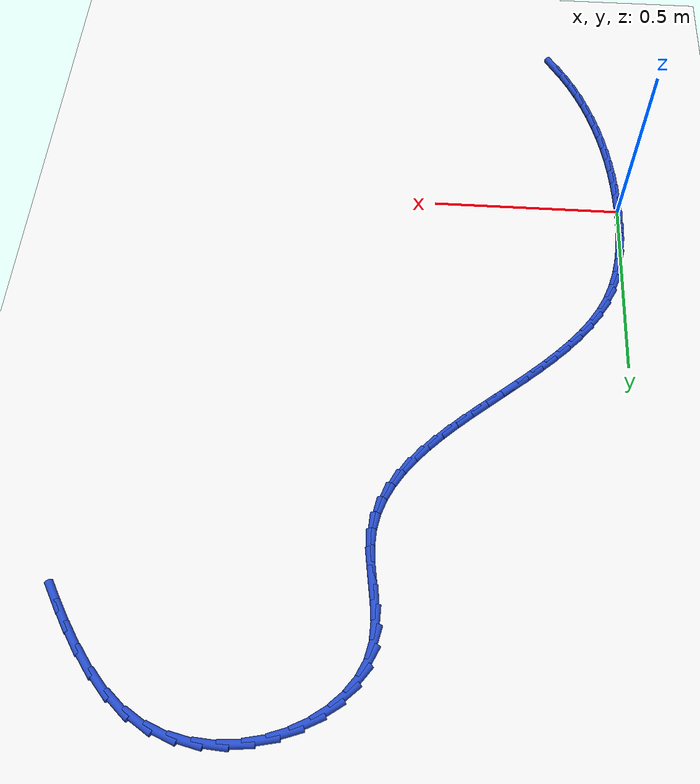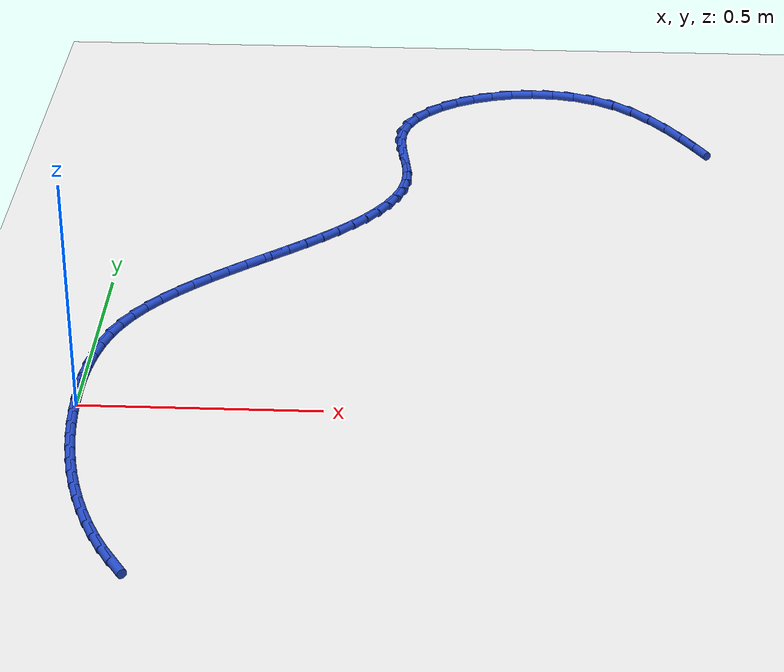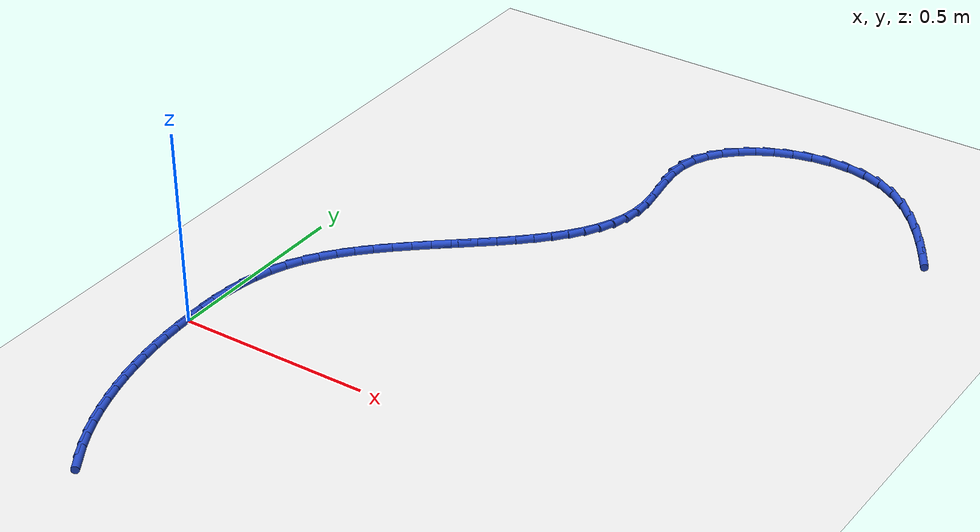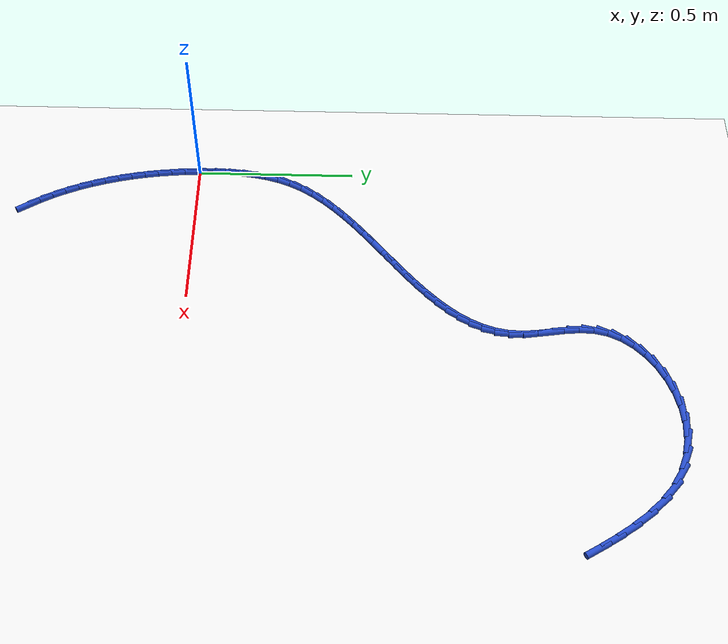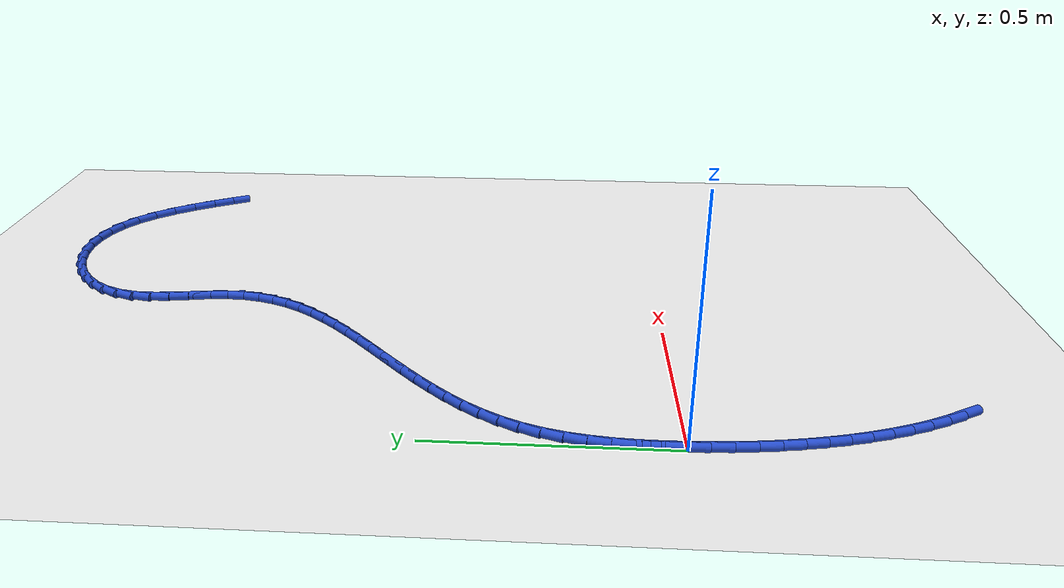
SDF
<sdf version="1.6">
 <world name="default">
  <model name="ground_plane">
   <static>1</static>
   <link name="link">
    <collision name="collision">
     <geometry><plane><normal>0 0 1</normal><size>100 100</size></plane></geometry>
     <surface><friction><ode><mu>100</mu><mu2>50</mu2></ode></friction></surface>
    </collision>
    <visual name="visual">
     <cast_shadows>0</cast_shadows>
     <geometry><plane><normal>0 0 1</normal><size>100 100</size></plane></geometry>
     <material>
      <script><uri>file://media/materials/scripts/gazebo.material</uri><name>Gazebo/WhiteGlow</name></script>
     </material>
    </visual>
   </link>
  </model>
  <model name="line">
   <link name="link_0">
    <pose>-3.0357660829594124e-17 6.938893903907228e-18 0.01 0 1.57 -1.553074628439133</pose>
    <collision name="collision">
     <geometry><cylinder><radius>0.01</radius><length>0.08</length></cylinder></geometry>
    </collision>
    <visual name="visual">
     <material>
      <script><name>Gazebo/Blue</name><uri>file://media/materials/scripts/gazebo.material</uri></script>
     </material>
     <geometry><cylinder><radius>0.01</radius><length>0.08</length></cylinder></geometry>
    </visual>
   </link>
   <link name="link_1">
    <pose>-0.0007901279141245099 0.04458067060196605 0.01 0 1.57 1.549204396804768</pose>
    <collision name="collision">
     <geometry><cylinder><radius>0.01</radius><length>0.08</length></cylinder></geometry>
    </collision>
    <visual name="visual">
     <material>
      <script><name>Gazebo/Blue</name><uri>file://media/materials/scripts/gazebo.material</uri></script>
     </material>
     <geometry><cylinder><radius>0.01</radius><length>0.08</length></cylinder></geometry>
    </visual>
   </link>
   <link name="link_2">
    <pose>0.000174105443379259 0.0892308481333902 0.01 0 1.57 1.5001961556845738</pose>
    <collision name="collision">
     <geometry><cylinder><radius>0.01</radius><length>0.08</length></cylinder></geometry>
    </collision>
    <visual name="visual">
     <material>
      <script><name>Gazebo/Blue</name><uri>file://media/materials/scripts/gazebo.material</uri></script>
     </material>
     <geometry><cylinder><radius>0.01</radius><length>0.08</length></cylinder></geometry>
    </visual>
   </link>
   <link name="link_3">
    <pose>0.003315180171562166 0.13364793904845731 0.01 0 1.57 1.4407188430618099</pose>
    <collision name="collision">
     <geometry><cylinder><radius>0.01</radius><length>0.08</length></cylinder></geometry>
    </collision>
    <visual name="visual">
     <material>
      <script><name>Gazebo/Blue</name><uri>file://media/materials/scripts/gazebo.material</uri></script>
     </material>
     <geometry><cylinder><radius>0.01</radius><length>0.08</length></cylinder></geometry>
    </visual>
   </link>
   <link name="link_4">
    <pose>0.009055576369475104 0.17752934980135243 0.01 0 1.57 1.369972532111425</pose>
    <collision name="collision">
     <geometry><cylinder><radius>0.01</radius><length>0.08</length></cylinder></geometry>
    </collision>
    <visual name="visual">
     <material>
      <script><name>Gazebo/Blue</name><uri>file://media/materials/scripts/gazebo.material</uri></script>
     </material>
     <geometry><cylinder><radius>0.01</radius><length>0.08</length></cylinder></geometry>
    </visual>
   </link>
   <link name="link_5">
    <pose>0.01781777413616896 0.22057248684626019 0.01 0 1.57 1.2873325100912216</pose>
    <collision name="collision">
     <geometry><cylinder><radius>0.01</radius><length>0.08</length></cylinder></geometry>
    </collision>
    <visual name="visual">
     <material>
      <script><name>Gazebo/Blue</name><uri>file://media/materials/scripts/gazebo.material</uri></script>
     </material>
     <geometry><cylinder><radius>0.01</radius><length>0.08</length></cylinder></geometry>
    </visual>
   </link>
   <link name="link_6">
    <pose>0.03002425357069461 0.2624747566373655 0.01 0 1.57 1.1926419788531324</pose>
    <collision name="collision">
     <geometry><cylinder><radius>0.01</radius><length>0.08</length></cylinder></geometry>
    </collision>
    <visual name="visual">
     <material>
      <script><name>Gazebo/Blue</name><uri>file://media/materials/scripts/gazebo.material</uri></script>
     </material>
     <geometry><cylinder><radius>0.01</radius><length>0.08</length></cylinder></geometry>
    </visual>
   </link>
   <link name="link_7">
    <pose>0.04609749477210298 0.30293356562885343 0.01 0 1.57 1.0889990187016318</pose>
    <collision name="collision">
     <geometry><cylinder><radius>0.01</radius><length>0.08</length></cylinder></geometry>
    </collision>
    <visual name="visual">
     <material>
      <script><name>Gazebo/Blue</name><uri>file://media/materials/scripts/gazebo.material</uri></script>
     </material>
     <geometry><cylinder><radius>0.01</radius><length>0.08</length></cylinder></geometry>
    </visual>
   </link>
   <link name="link_8">
    <pose>0.06636599742501177 0.3416954748177271 0.01 0 1.57 0.9932835902297723</pose>
    <collision name="collision">
     <geometry><cylinder><radius>0.01</radius><length>0.08</length></cylinder></geometry>
    </collision>
    <visual name="visual">
     <material>
      <script><name>Gazebo/Blue</name><uri>file://media/materials/scripts/gazebo.material</uri></script>
     </material>
     <geometry><cylinder><radius>0.01</radius><length>0.08</length></cylinder></geometry>
    </visual>
   </link>
   <link name="link_9">
    <pose>0.09055778105871455 0.37882111412359 0.01 0 1.57 0.9121909174537467</pose>
    <collision name="collision">
     <geometry><cylinder><radius>0.01</radius><length>0.08</length></cylinder></geometry>
    </collision>
    <visual name="visual">
     <material>
      <script><name>Gazebo/Blue</name><uri>file://media/materials/scripts/gazebo.material</uri></script>
     </material>
     <geometry><cylinder><radius>0.01</radius><length>0.08</length></cylinder></geometry>
    </visual>
   </link>
   <link name="link_10">
    <pose>0.118164590096321 0.4144946923510066 0.01 0 1.57 0.8452936040650084</pose>
    <collision name="collision">
     <geometry><cylinder><radius>0.01</radius><length>0.08</length></cylinder></geometry>
    </collision>
    <visual name="visual">
     <material>
      <script><name>Gazebo/Blue</name><uri>file://media/materials/scripts/gazebo.material</uri></script>
     </material>
     <geometry><cylinder><radius>0.01</radius><length>0.08</length></cylinder></geometry>
    </visual>
   </link>
   <link name="link_11">
    <pose>0.14867760197149155 0.4489007148568321 0.01 0 1.57 0.7916272695713802</pose>
    <collision name="collision">
     <geometry><cylinder><radius>0.01</radius><length>0.08</length></cylinder></geometry>
    </collision>
    <visual name="visual">
     <material>
      <script><name>Gazebo/Blue</name><uri>file://media/materials/scripts/gazebo.material</uri></script>
     </material>
     <geometry><cylinder><radius>0.01</radius><length>0.08</length></cylinder></geometry>
    </visual>
   </link>
   <link name="link_12">
    <pose>0.1815879941178864 0.48222368699792134 0.01 0 1.57 0.750089971589212</pose>
    <collision name="collision">
     <geometry><cylinder><radius>0.01</radius><length>0.08</length></cylinder></geometry>
    </collision>
    <visual name="visual">
     <material>
      <script><name>Gazebo/Blue</name><uri>file://media/materials/scripts/gazebo.material</uri></script>
     </material>
     <geometry><cylinder><radius>0.01</radius><length>0.08</length></cylinder></geometry>
    </visual>
   </link>
   <link name="link_13">
    <pose>0.21638694396916622 0.5146481141311298 0.01 0 1.57 0.7196753319886483</pose>
    <collision name="collision">
     <geometry><cylinder><radius>0.01</radius><length>0.08</length></cylinder></geometry>
    </collision>
    <visual name="visual">
     <material>
      <script><name>Gazebo/Blue</name><uri>file://media/materials/scripts/gazebo.material</uri></script>
     </material>
     <geometry><cylinder><radius>0.01</radius><length>0.08</length></cylinder></geometry>
    </visual>
   </link>
   <link name="link_14">
    <pose>0.25256562895899115 0.5463585016133123 0.01 0 1.57 0.699595779834706</pose>
    <collision name="collision">
     <geometry><cylinder><radius>0.01</radius><length>0.08</length></cylinder></geometry>
    </collision>
    <visual name="visual">
     <material>
      <script><name>Gazebo/Blue</name><uri>file://media/materials/scripts/gazebo.material</uri></script>
     </material>
     <geometry><cylinder><radius>0.01</radius><length>0.08</length></cylinder></geometry>
    </visual>
   </link>
   <link name="link_15">
    <pose>0.2896152265210216 0.5775393548013241 0.01 0 1.57 0.6893415336585952</pose>
    <collision name="collision">
     <geometry><cylinder><radius>0.01</radius><length>0.08</length></cylinder></geometry>
    </collision>
    <visual name="visual">
     <material>
      <script><name>Gazebo/Blue</name><uri>file://media/materials/scripts/gazebo.material</uri></script>
     </material>
     <geometry><cylinder><radius>0.01</radius><length>0.08</length></cylinder></geometry>
    </visual>
   </link>
   <link name="link_16">
    <pose>0.32702691408891826 0.6083751790520205 0.01 0 1.57 0.6887087083756894</pose>
    <collision name="collision">
     <geometry><cylinder><radius>0.01</radius><length>0.08</length></cylinder></geometry>
    </collision>
    <visual name="visual">
     <material>
      <script><name>Gazebo/Blue</name><uri>file://media/materials/scripts/gazebo.material</uri></script>
     </material>
     <geometry><cylinder><radius>0.01</radius><length>0.08</length></cylinder></geometry>
    </visual>
   </link>
   <link name="link_17">
    <pose>0.36429186909634115 0.6390504797222563 0.01 0 1.57 0.6978166173289755</pose>
    <collision name="collision">
     <geometry><cylinder><radius>0.01</radius><length>0.08</length></cylinder></geometry>
    </collision>
    <visual name="visual">
     <material>
      <script><name>Gazebo/Blue</name><uri>file://media/materials/scripts/gazebo.material</uri></script>
     </material>
     <geometry><cylinder><radius>0.01</radius><length>0.08</length></cylinder></geometry>
    </visual>
   </link>
   <link name="link_18">
    <pose>0.4009012689769507 0.6697497621688865 0.01 0 1.57 0.7171237123761259</pose>
    <collision name="collision">
     <geometry><cylinder><radius>0.01</radius><length>0.08</length></cylinder></geometry>
    </collision>
    <visual name="visual">
     <material>
      <script><name>Gazebo/Blue</name><uri>file://media/materials/scripts/gazebo.material</uri></script>
     </material>
     <geometry><cylinder><radius>0.01</radius><length>0.08</length></cylinder></geometry>
    </visual>
   </link>
   <link name="link_19">
    <pose>0.43634629116440754 0.7006575317487665 0.01 0 1.57 0.7474424996967688</pose>
    <collision name="collision">
     <geometry><cylinder><radius>0.01</radius><length>0.08</length></cylinder></geometry>
    </collision>
    <visual name="visual">
     <material>
      <script><name>Gazebo/Blue</name><uri>file://media/materials/scripts/gazebo.material</uri></script>
     </material>
     <geometry><cylinder><radius>0.01</radius><length>0.08</length></cylinder></geometry>
    </visual>
   </link>
   <link name="link_20">
    <pose>0.4701181130923718 0.7319582938187513 0.01 0 1.57 0.789943108257413</pose>
    <collision name="collision">
     <geometry><cylinder><radius>0.01</radius><length>0.08</length></cylinder></geometry>
    </collision>
    <visual name="visual">
     <material>
      <script><name>Gazebo/Blue</name><uri>file://media/materials/scripts/gazebo.material</uri></script>
     </material>
     <geometry><cylinder><radius>0.01</radius><length>0.08</length></cylinder></geometry>
    </visual>
   </link>
   <link name="link_21">
    <pose>0.501707912194504 0.7638365537356961 0.01 0 1.57 0.8461189587645169</pose>
    <collision name="collision">
     <geometry><cylinder><radius>0.01</radius><length>0.08</length></cylinder></geometry>
    </collision>
    <visual name="visual">
     <material>
      <script><name>Gazebo/Blue</name><uri>file://media/materials/scripts/gazebo.material</uri></script>
     </material>
     <geometry><cylinder><radius>0.01</radius><length>0.08</length></cylinder></geometry>
    </visual>
   </link>
   <link name="link_22">
    <pose>0.5306068659044644 0.796476816856456 0.01 0 1.57 0.9176626161256145</pose>
    <collision name="collision">
     <geometry><cylinder><radius>0.01</radius><length>0.08</length></cylinder></geometry>
    </collision>
    <visual name="visual">
     <material>
      <script><name>Gazebo/Blue</name><uri>file://media/materials/scripts/gazebo.material</uri></script>
     </material>
     <geometry><cylinder><radius>0.01</radius><length>0.08</length></cylinder></geometry>
    </visual>
   </link>
   <link name="link_23">
    <pose>0.5563061516559136 0.8300635885378859 0.01 0 1.57 1.006168050811545</pose>
    <collision name="collision">
     <geometry><cylinder><radius>0.01</radius><length>0.08</length></cylinder></geometry>
    </collision>
    <visual name="visual">
     <material>
      <script><name>Gazebo/Blue</name><uri>file://media/materials/scripts/gazebo.material</uri></script>
     </material>
     <geometry><cylinder><radius>0.01</radius><length>0.08</length></cylinder></geometry>
    </visual>
   </link>
   <link name="link_24">
    <pose>0.5782969468825119 0.8647813741368411 0.01 0 1.57 1.1125620676882175</pose>
    <collision name="collision">
     <geometry><cylinder><radius>0.01</radius><length>0.08</length></cylinder></geometry>
    </collision>
    <visual name="visual">
     <material>
      <script><name>Gazebo/Blue</name><uri>file://media/materials/scripts/gazebo.material</uri></script>
     </material>
     <geometry><cylinder><radius>0.01</radius><length>0.08</length></cylinder></geometry>
    </visual>
   </link>
   <link name="link_25">
    <pose>0.5960704290179195 0.9008146790101768 0.01 0 1.57 1.2362430970811253</pose>
    <collision name="collision">
     <geometry><cylinder><radius>0.01</radius><length>0.08</length></cylinder></geometry>
    </collision>
    <visual name="visual">
     <material>
      <script><name>Gazebo/Blue</name><uri>file://media/materials/scripts/gazebo.material</uri></script>
     </material>
     <geometry><cylinder><radius>0.01</radius><length>0.08</length></cylinder></geometry>
    </visual>
   </link>
   <link name="link_26">
    <pose>0.609117775495797 0.9383480085147478 0.01 0 1.57 1.3741654403300576</pose>
    <collision name="collision">
     <geometry><cylinder><radius>0.01</radius><length>0.08</length></cylinder></geometry>
    </collision>
    <visual name="visual">
     <material>
      <script><name>Gazebo/Blue</name><uri>file://media/materials/scripts/gazebo.material</uri></script>
     </material>
     <geometry><cylinder><radius>0.01</radius><length>0.08</length></cylinder></geometry>
    </visual>
   </link>
   <link name="link_27">
    <pose>0.6169301637498048 0.9775658680074095 0.01 0 1.57 1.520465684541178</pose>
    <collision name="collision">
     <geometry><cylinder><radius>0.01</radius><length>0.08</length></cylinder></geometry>
    </collision>
    <visual name="visual">
     <material>
      <script><name>Gazebo/Blue</name><uri>file://media/materials/scripts/gazebo.material</uri></script>
     </material>
     <geometry><cylinder><radius>0.01</radius><length>0.08</length></cylinder></geometry>
    </visual>
   </link>
   <link name="link_28">
    <pose>0.6189998266631821 1.0186524689419427 0.01 0 1.57 -1.4917065667509501</pose>
    <collision name="collision">
     <geometry><cylinder><radius>0.01</radius><length>0.08</length></cylinder></geometry>
    </collision>
    <visual name="visual">
     <material>
      <script><name>Gazebo/Blue</name><uri>file://media/materials/scripts/gazebo.material</uri></script>
     </material>
     <geometry><cylinder><radius>0.01</radius><length>0.08</length></cylinder></geometry>
    </visual>
   </link>
   <link name="link_29">
    <pose>0.6155979898661069 1.0615751025445888 0.01 0 1.57 -1.425765584232859</pose>
    <collision name="collision">
     <geometry><cylinder><radius>0.01</radius><length>0.08</length></cylinder></geometry>
    </collision>
    <visual name="visual">
     <material>
      <script><name>Gazebo/Blue</name><uri>file://media/materials/scripts/gazebo.material</uri></script>
     </material>
     <geometry><cylinder><radius>0.01</radius><length>0.08</length></cylinder></geometry>
    </visual>
   </link>
   <link name="link_30">
    <pose>0.6091532271839346 1.1057003195812676 0.01 0 1.57 -1.4219051527942592</pose>
    <collision name="collision">
     <geometry><cylinder><radius>0.01</radius><length>0.08</length></cylinder></geometry>
    </collision>
    <visual name="visual">
     <material>
      <script><name>Gazebo/Blue</name><uri>file://media/materials/scripts/gazebo.material</uri></script>
     </material>
     <geometry><cylinder><radius>0.01</radius><length>0.08</length></cylinder></geometry>
    </visual>
   </link>
   <link name="link_31">
    <pose>0.6024644889751497 1.150291534861682 0.01 0 1.57 -1.477795868608527</pose>
    <collision name="collision">
     <geometry><cylinder><radius>0.01</radius><length>0.08</length></cylinder></geometry>
    </collision>
    <visual name="visual">
     <material>
      <script><name>Gazebo/Blue</name><uri>file://media/materials/scripts/gazebo.material</uri></script>
     </material>
     <geometry><cylinder><radius>0.01</radius><length>0.08</length></cylinder></geometry>
    </visual>
   </link>
   <link name="link_32">
    <pose>0.5983307255982356 1.1946121631955346 0.01 0 1.57 1.542633272863274</pose>
    <collision name="collision">
     <geometry><cylinder><radius>0.01</radius><length>0.08</length></cylinder></geometry>
    </collision>
    <visual name="visual">
     <material>
      <script><name>Gazebo/Blue</name><uri>file://media/materials/scripts/gazebo.material</uri></script>
     </material>
     <geometry><cylinder><radius>0.01</radius><length>0.08</length></cylinder></geometry>
    </visual>
   </link>
   <link name="link_33">
    <pose>0.599550887411677 1.2379256193925288 0.01 0 1.57 1.3505509018669752</pose>
    <collision name="collision">
     <geometry><cylinder><radius>0.01</radius><length>0.08</length></cylinder></geometry>
    </collision>
    <visual name="visual">
     <material>
      <script><name>Gazebo/Blue</name><uri>file://media/materials/scripts/gazebo.material</uri></script>
     </material>
     <geometry><cylinder><radius>0.01</radius><length>0.08</length></cylinder></geometry>
    </visual>
   </link>
   <link name="link_34">
    <pose>0.608857741209896 1.279496876197769 0.01 0 1.57 1.1322940176531735</pose>
    <collision name="collision">
     <geometry><cylinder><radius>0.01</radius><length>0.08</length></cylinder></geometry>
    </collision>
    <visual name="visual">
     <material>
      <script><name>Gazebo/Blue</name><uri>file://media/materials/scripts/gazebo.material</uri></script>
     </material>
     <geometry><cylinder><radius>0.01</radius><length>0.08</length></cylinder></geometry>
    </visual>
   </link>
   <link name="link_35">
    <pose>0.6272105496815719 1.318632653954447 0.01 0 1.57 0.9381526829207408</pose>
    <collision name="collision">
     <geometry><cylinder><radius>0.01</radius><length>0.08</length></cylinder></geometry>
    </collision>
    <visual name="visual">
     <material>
      <script><name>Gazebo/Blue</name><uri>file://media/materials/scripts/gazebo.material</uri></script>
     </material>
     <geometry><cylinder><radius>0.01</radius><length>0.08</length></cylinder></geometry>
    </visual>
   </link>
   <link name="link_36">
    <pose>0.6536431038155665 1.3546849978620055 0.01 0 1.57 0.7682769348026213</pose>
    <collision name="collision">
     <geometry><cylinder><radius>0.01</radius><length>0.08</length></cylinder></geometry>
    </collision>
    <visual name="visual">
     <material>
      <script><name>Gazebo/Blue</name><uri>file://media/materials/scripts/gazebo.material</uri></script>
     </material>
     <geometry><cylinder><radius>0.01</radius><length>0.08</length></cylinder></geometry>
    </visual>
   </link>
   <link name="link_37">
    <pose>0.6870925531043579 1.3870082280231897 0.01 0 1.57 0.616932547448426</pose>
    <collision name="collision">
     <geometry><cylinder><radius>0.01</radius><length>0.08</length></cylinder></geometry>
    </collision>
    <visual name="visual">
     <material>
      <script><name>Gazebo/Blue</name><uri>file://media/materials/scripts/gazebo.material</uri></script>
     </material>
     <geometry><cylinder><radius>0.01</radius><length>0.08</length></cylinder></geometry>
    </visual>
   </link>
   <link name="link_38">
    <pose>0.7264960470404243 1.4149566645407463 0.01 0 1.57 0.4776466507775044</pose>
    <collision name="collision">
     <geometry><cylinder><radius>0.01</radius><length>0.08</length></cylinder></geometry>
    </collision>
    <visual name="visual">
     <material>
      <script><name>Gazebo/Blue</name><uri>file://media/materials/scripts/gazebo.material</uri></script>
     </material>
     <geometry><cylinder><radius>0.01</radius><length>0.08</length></cylinder></geometry>
    </visual>
   </link>
   <link name="link_39">
    <pose>0.7707907351162429 1.4378846275174197 0.01 0 1.57 0.3444056914961959</pose>
    <collision name="collision">
     <geometry><cylinder><radius>0.01</radius><length>0.08</length></cylinder></geometry>
    </collision>
    <visual name="visual">
     <material>
      <script><name>Gazebo/Blue</name><uri>file://media/materials/scripts/gazebo.material</uri></script>
     </material>
     <geometry><cylinder><radius>0.01</radius><length>0.08</length></cylinder></geometry>
    </visual>
   </link>
   <link name="link_40">
    <pose>0.8189137668242923 1.4551464370559573 0.01 0 1.57 0.21194413332543177</pose>
    <collision name="collision">
     <geometry><cylinder><radius>0.01</radius><length>0.08</length></cylinder></geometry>
    </collision>
    <visual name="visual">
     <material>
      <script><name>Gazebo/Blue</name><uri>file://media/materials/scripts/gazebo.material</uri></script>
     </material>
     <geometry><cylinder><radius>0.01</radius><length>0.08</length></cylinder></geometry>
    </visual>
   </link>
   <link name="link_41">
    <pose>0.8698022916570498 1.4660964132591037 0.01 0 1.57 0.0757697522400697</pose>
    <collision name="collision">
     <geometry><cylinder><radius>0.01</radius><length>0.08</length></cylinder></geometry>
    </collision>
    <visual name="visual">
     <material>
      <script><name>Gazebo/Blue</name><uri>file://media/materials/scripts/gazebo.material</uri></script>
     </material>
     <geometry><cylinder><radius>0.01</radius><length>0.08</length></cylinder></geometry>
    </visual>
   </link>
   <link name="link_42">
    <pose>0.9223934591069932 1.4700888762296054 0.01 0 1.57 -0.06772764670613399</pose>
    <collision name="collision">
     <geometry><cylinder><radius>0.01</radius><length>0.08</length></cylinder></geometry>
    </collision>
    <visual name="visual">
     <material>
      <script><name>Gazebo/Blue</name><uri>file://media/materials/scripts/gazebo.material</uri></script>
     </material>
     <geometry><cylinder><radius>0.01</radius><length>0.08</length></cylinder></geometry>
    </visual>
   </link>
   <link name="link_43">
    <pose>0.9756244186666013 1.4664781460702083 0.01 0 1.57 -0.22091472987753152</pose>
    <collision name="collision">
     <geometry><cylinder><radius>0.01</radius><length>0.08</length></cylinder></geometry>
    </collision>
    <visual name="visual">
     <material>
      <script><name>Gazebo/Blue</name><uri>file://media/materials/scripts/gazebo.material</uri></script>
     </material>
     <geometry><cylinder><radius>0.01</radius><length>0.08</length></cylinder></geometry>
    </visual>
   </link>
   <link name="link_44">
    <pose>1.028432319828351 1.4546185428836576 0.01 0 1.57 -0.3842860537588678</pose>
    <collision name="collision">
     <geometry><cylinder><radius>0.01</radius><length>0.08</length></cylinder></geometry>
    </collision>
    <visual name="visual">
     <material>
      <script><name>Gazebo/Blue</name><uri>file://media/materials/scripts/gazebo.material</uri></script>
     </material>
     <geometry><cylinder><radius>0.01</radius><length>0.08</length></cylinder></geometry>
    </visual>
   </link>
   <link name="link_45">
    <pose>1.079754312084721 1.4338643867726997 0.01 0 1.57 -0.555788848875577</pose>
    <collision name="collision">
     <geometry><cylinder><radius>0.01</radius><length>0.08</length></cylinder></geometry>
    </collision>
    <visual name="visual">
     <material>
      <script><name>Gazebo/Blue</name><uri>file://media/materials/scripts/gazebo.material</uri></script>
     </material>
     <geometry><cylinder><radius>0.01</radius><length>0.08</length></cylinder></geometry>
    </visual>
   </link>
   <link name="link_46">
    <pose>1.1285277169356334 1.4035712963325608 0.01 0 1.57 -0.7169326110066782</pose>
    <collision name="collision">
     <geometry><cylinder><radius>0.01</radius><length>0.08</length></cylinder></geometry>
    </collision>
    <visual name="visual">
     <material>
      <script><name>Gazebo/Blue</name><uri>file://media/materials/scripts/gazebo.material</uri></script>
     </material>
     <geometry><cylinder><radius>0.01</radius><length>0.08</length></cylinder></geometry>
    </visual>
   </link>
   <link name="link_47">
    <pose>1.1738217427984357 1.3640905108471728 0.01 0 1.57 -0.8348408429273039</pose>
    <collision name="collision">
     <geometry><cylinder><radius>0.01</radius><length>0.08</length></cylinder></geometry>
    </collision>
    <visual name="visual">
     <material>
      <script><name>Gazebo/Blue</name><uri>file://media/materials/scripts/gazebo.material</uri></script>
     </material>
     <geometry><cylinder><radius>0.01</radius><length>0.08</length></cylinder></geometry>
    </visual>
   </link>
   <link name="link_48">
    <pose>1.2150727049811045 1.3185445771904358 0.01 0 1.57 -0.9180297185291241</pose>
    <collision name="collision">
     <geometry><cylinder><radius>0.01</radius><length>0.08</length></cylinder></geometry>
    </collision>
    <visual name="visual">
     <material>
      <script><name>Gazebo/Blue</name><uri>file://media/materials/scripts/gazebo.material</uri></script>
     </material>
     <geometry><cylinder><radius>0.01</radius><length>0.08</length></cylinder></geometry>
    </visual>
   </link>
   <link name="link_49">
    <pose>1.2517802848746813 1.2705343958477524 0.01 0 1.57 -0.9766913718913945</pose>
    <collision name="collision">
     <geometry><cylinder><radius>0.01</radius><length>0.08</length></cylinder></geometry>
    </collision>
    <visual name="visual">
     <material>
      <script><name>Gazebo/Blue</name><uri>file://media/materials/scripts/gazebo.material</uri></script>
     </material>
     <geometry><cylinder><radius>0.01</radius><length>0.08</length></cylinder></geometry>
    </visual>
   </link>
   <link name="link_50">
    <pose>1.2834441638702054 1.223660867304524 0.01 0 1.57 -1.0158768063774637</pose>
    <collision name="collision">
     <geometry><cylinder><radius>0.01</radius><length>0.08</length></cylinder></geometry>
    </collision>
    <visual name="visual">
     <material>
      <script><name>Gazebo/Blue</name><uri>file://media/materials/scripts/gazebo.material</uri></script>
     </material>
     <geometry><cylinder><radius>0.01</radius><length>0.08</length></cylinder></geometry>
    </visual>
   </link>
   <link name="link_51">
    <pose>1.3095640233587176 1.181524892046153 0.01 0 1.57 -1.034804785587061</pose>
    <collision name="collision">
     <geometry><cylinder><radius>0.01</radius><length>0.08</length></cylinder></geometry>
    </collision>
    <visual name="visual">
     <material>
      <script><name>Gazebo/Blue</name><uri>file://media/materials/scripts/gazebo.material</uri></script>
     </material>
     <geometry><cylinder><radius>0.01</radius><length>0.08</length></cylinder></geometry>
    </visual>
   </link>
   <link name="link_187">
    <pose>0.15673488175008313 -0.5418070366601975 0.01 0 1.57 -1.0055396269857746</pose>
    <collision name="collision">
     <geometry><cylinder><radius>0.01</radius><length>0.08</length></cylinder></geometry>
    </collision>
    <visual name="visual">
     <material>
      <script><name>Gazebo/Blue</name><uri>file://media/materials/scripts/gazebo.material</uri></script>
     </material>
     <geometry><cylinder><radius>0.01</radius><length>0.08</length></cylinder></geometry>
    </visual>
   </link>
   <link name="link_188">
    <pose>0.1332099753069308 -0.5047188651946758 0.01 0 1.57 -1.0652810126767605</pose>
    <collision name="collision">
     <geometry><cylinder><radius>0.01</radius><length>0.08</length></cylinder></geometry>
    </collision>
    <visual name="visual">
     <material>
      <script><name>Gazebo/Blue</name><uri>file://media/materials/scripts/gazebo.material</uri></script>
     </material>
     <geometry><cylinder><radius>0.01</radius><length>0.08</length></cylinder></geometry>
    </visual>
   </link>
   <link name="link_189">
    <pose>0.11189414007699033 -0.4662068653554156 0.01 0 1.57 -1.1205339291278675</pose>
    <collision name="collision">
     <geometry><cylinder><radius>0.01</radius><length>0.08</length></cylinder></geometry>
    </collision>
    <visual name="visual">
     <material>
      <script><name>Gazebo/Blue</name><uri>file://media/materials/scripts/gazebo.material</uri></script>
     </material>
     <geometry><cylinder><radius>0.01</radius><length>0.08</length></cylinder></geometry>
    </visual>
   </link>
   <link name="link_190">
    <pose>0.09270168548337472 -0.426502068075968 0.01 0 1.57 -1.171605660576394</pose>
    <collision name="collision">
     <geometry><cylinder><radius>0.01</radius><length>0.08</length></cylinder></geometry>
    </collision>
    <visual name="visual">
     <material>
      <script><name>Gazebo/Blue</name><uri>file://media/materials/scripts/gazebo.material</uri></script>
     </material>
     <geometry><cylinder><radius>0.01</radius><length>0.08</length></cylinder></geometry>
    </visual>
   </link>
   <link name="link_191">
    <pose>0.07554692094919692 -0.3858355042898837 0.01 0 1.57 -1.218845796111449</pose>
    <collision name="collision">
     <geometry><cylinder><radius>0.01</radius><length>0.08</length></cylinder></geometry>
    </collision>
    <visual name="visual">
     <material>
      <script><name>Gazebo/Blue</name><uri>file://media/materials/scripts/gazebo.material</uri></script>
     </material>
     <geometry><cylinder><radius>0.01</radius><length>0.08</length></cylinder></geometry>
    </visual>
   </link>
   <link name="link_192">
    <pose>0.06034415589757017 -0.34443820493071464 0.01 0 1.57 -1.262623655865529</pose>
    <collision name="collision">
     <geometry><cylinder><radius>0.01</radius><length>0.08</length></cylinder></geometry>
    </collision>
    <visual name="visual">
     <material>
      <script><name>Gazebo/Blue</name><uri>file://media/materials/scripts/gazebo.material</uri></script>
     </material>
     <geometry><cylinder><radius>0.01</radius><length>0.08</length></cylinder></geometry>
    </visual>
   </link>
   <link name="link_193">
    <pose>0.0470077126101027 -0.30254105450354163 0.01 0 1.57 -1.3037961254352692</pose>
    <collision name="collision">
     <geometry><cylinder><radius>0.01</radius><length>0.08</length></cylinder></geometry>
    </collision>
    <visual name="visual">
     <material>
      <script><name>Gazebo/Blue</name><uri>file://media/materials/scripts/gazebo.material</uri></script>
     </material>
     <geometry><cylinder><radius>0.01</radius><length>0.08</length></cylinder></geometry>
    </visual>
   </link>
   <link name="link_194">
    <pose>0.03545727174412429 -0.26031391803255705 0.01 0 1.57 -1.3436922457096874</pose>
    <collision name="collision">
     <geometry><cylinder><radius>0.01</radius><length>0.08</length></cylinder></geometry>
    </collision>
    <visual name="visual">
     <material>
      <script><name>Gazebo/Blue</name><uri>file://media/materials/scripts/gazebo.material</uri></script>
     </material>
     <geometry><cylinder><radius>0.01</radius><length>0.08</length></cylinder></geometry>
    </visual>
   </link>
   <link name="link_195">
    <pose>0.02562613197342356 -0.2177715828955797 0.01 0 1.57 -1.3823213014334286</pose>
    <collision name="collision">
     <geometry><cylinder><radius>0.01</radius><length>0.08</length></cylinder></geometry>
    </collision>
    <visual name="visual">
     <material>
      <script><name>Gazebo/Blue</name><uri>file://media/materials/scripts/gazebo.material</uri></script>
     </material>
     <geometry><cylinder><radius>0.01</radius><length>0.08</length></cylinder></geometry>
    </visual>
   </link>
   <link name="link_196">
    <pose>0.017449723310883798 -0.17490456545772967 0.01 0 1.57 -1.4195060184059238</pose>
    <collision name="collision">
     <geometry><cylinder><radius>0.01</radius><length>0.08</length></cylinder></geometry>
    </collision>
    <visual name="visual">
     <material>
      <script><name>Gazebo/Blue</name><uri>file://media/materials/scripts/gazebo.material</uri></script>
     </material>
     <geometry><cylinder><radius>0.01</radius><length>0.08</length></cylinder></geometry>
    </visual>
   </link>
   <link name="link_197">
    <pose>0.010863475769388274 -0.13170338208412677 0.01 0 1.57 -1.455098202658785</pose>
    <collision name="collision">
     <geometry><cylinder><radius>0.01</radius><length>0.08</length></cylinder></geometry>
    </collision>
    <visual name="visual">
     <material>
      <script><name>Gazebo/Blue</name><uri>file://media/materials/scripts/gazebo.material</uri></script>
     </material>
     <geometry><cylinder><radius>0.01</radius><length>0.08</length></cylinder></geometry>
    </visual>
   </link>
   <link name="link_198">
    <pose>0.005802819361820277 -0.08815854913989093 0.01 0 1.57 -1.488979332109928</pose>
    <collision name="collision">
     <geometry><cylinder><radius>0.01</radius><length>0.08</length></cylinder></geometry>
    </collision>
    <visual name="visual">
     <material>
      <script><name>Gazebo/Blue</name><uri>file://media/materials/scripts/gazebo.material</uri></script>
     </material>
     <geometry><cylinder><radius>0.01</radius><length>0.08</length></cylinder></geometry>
    </visual>
   </link>
   <link name="link_199">
    <pose>0.00220318410106308 -0.04426058299014204 0.01 0 1.57 -1.521059812605589</pose>
    <collision name="collision">
     <geometry><cylinder><radius>0.01</radius><length>0.08</length></cylinder></geometry>
    </collision>
    <visual name="visual">
     <material>
      <script><name>Gazebo/Blue</name><uri>file://media/materials/scripts/gazebo.material</uri></script>
     </material>
     <geometry><cylinder><radius>0.01</radius><length>0.08</length></cylinder></geometry>
    </visual>
   </link>
   <link name="link_200">
    <pose>-3.165870343657673e-17 -2.0816681711721685e-17 0.01 0 1.57 -1.5512771716979654</pose>
    <collision name="collision">
     <geometry><cylinder><radius>0.01</radius><length>0.08</length></cylinder></geometry>
    </collision>
    <visual name="visual">
     <material>
      <script><name>Gazebo/Blue</name><uri>file://media/materials/scripts/gazebo.material</uri></script>
     </material>
     <geometry><cylinder><radius>0.01</radius><length>0.08</length></cylinder></geometry>
    </visual>
   </link>
   <link name="link_201">
    <pose>-0.0008713029284857865 0.04463268346541623 0.01 0 1.57 -1.5512771716979654</pose>
    <collision name="collision">
     <geometry><cylinder><radius>0.01</radius><length>0.08</length></cylinder></geometry>
    </collision>
    <visual name="visual">
     <material>
      <script><name>Gazebo/Blue</name><uri>file://media/materials/scripts/gazebo.material</uri></script>
     </material>
     <geometry><cylinder><radius>0.01</radius><length>0.08</length></cylinder></geometry>
    </visual>
   </link>
  </model>
 </world>
</sdf>
